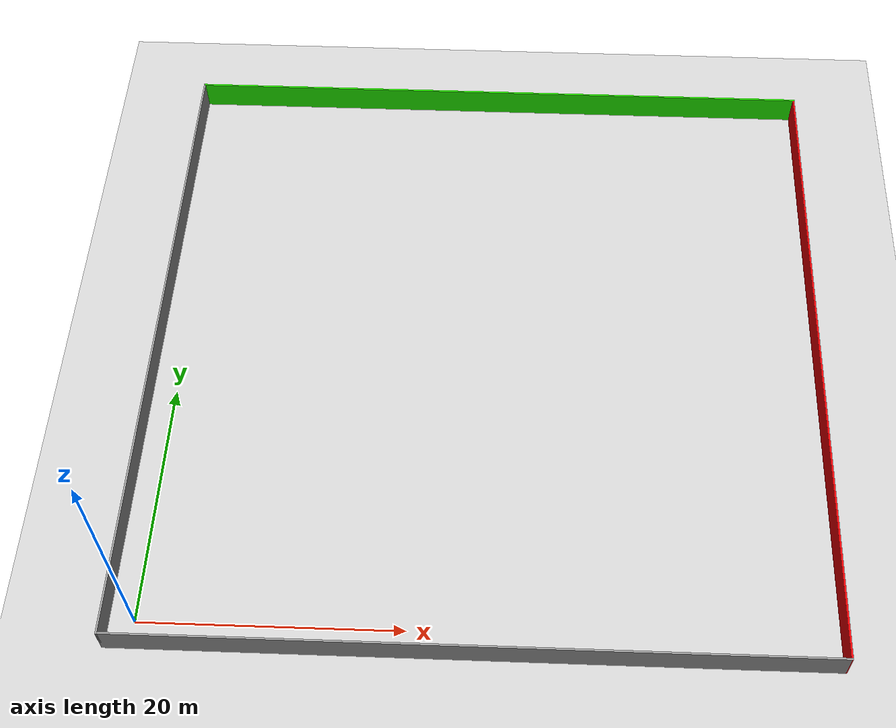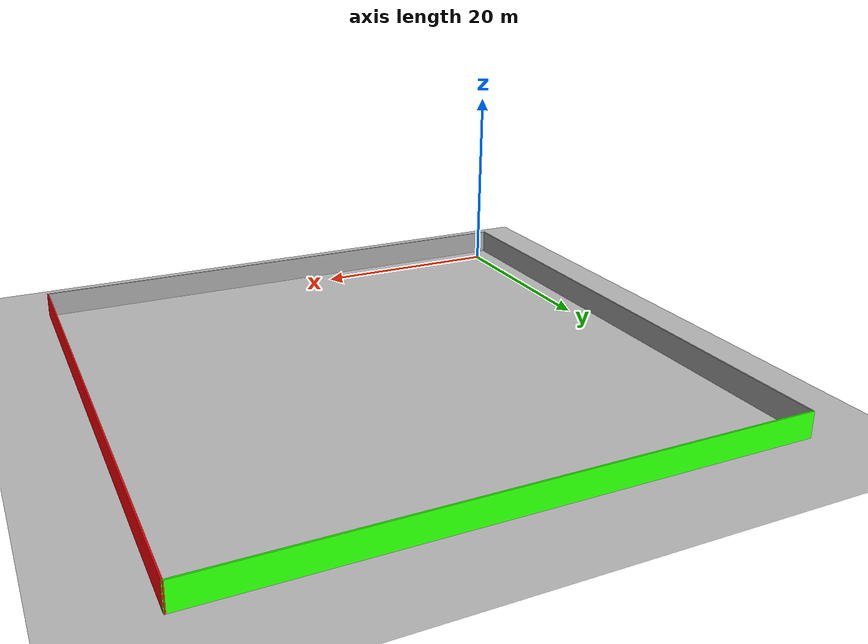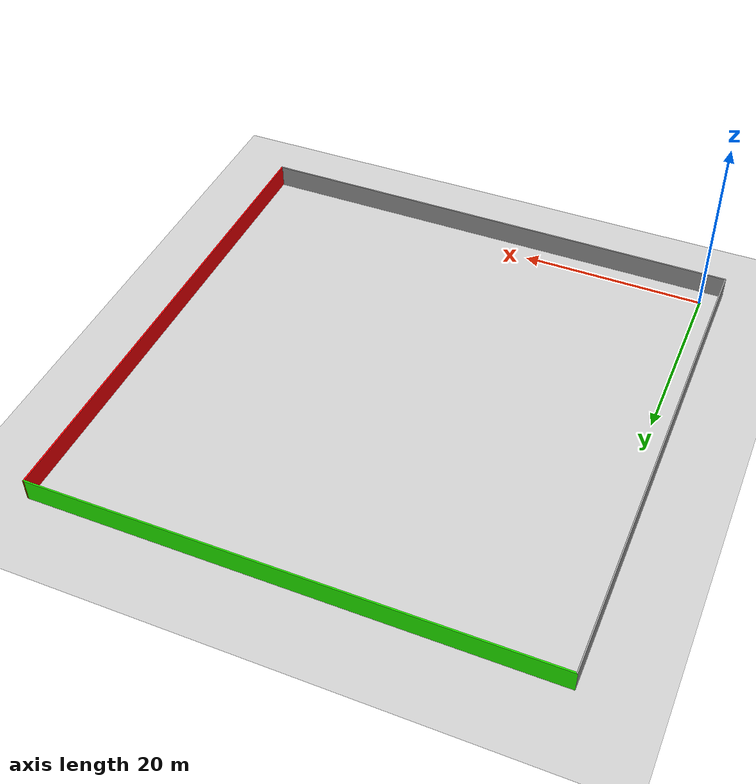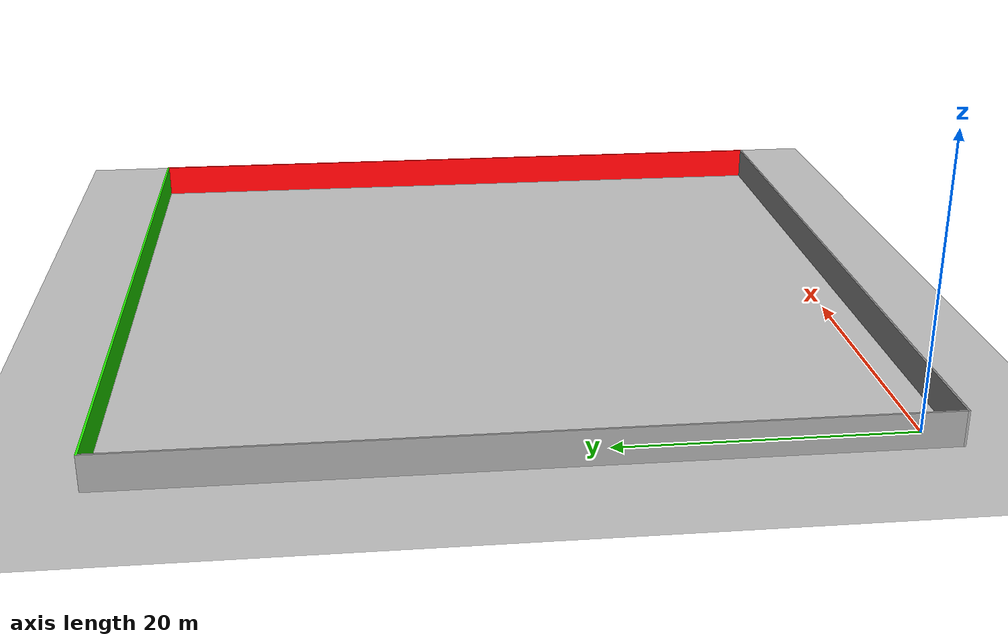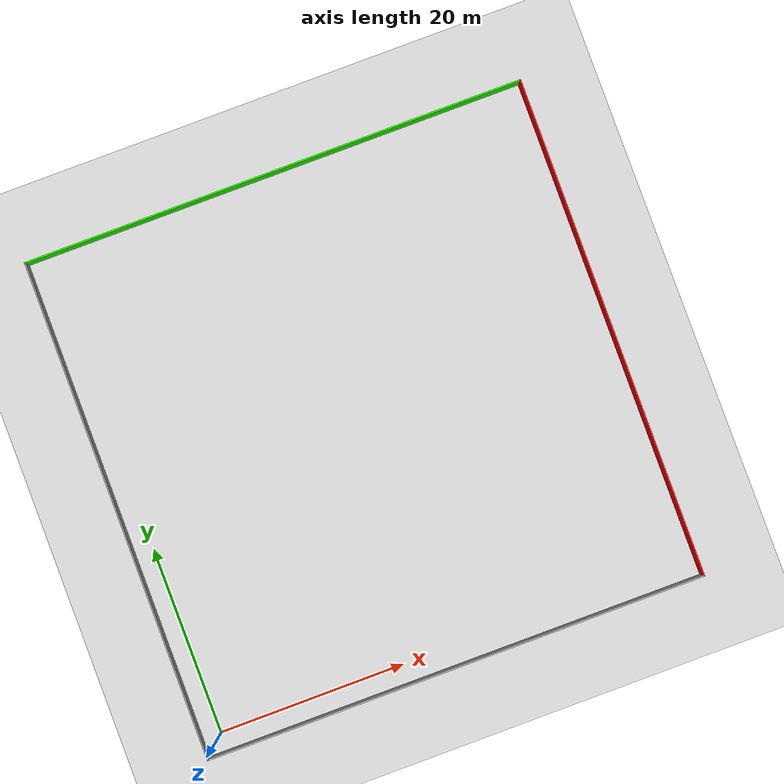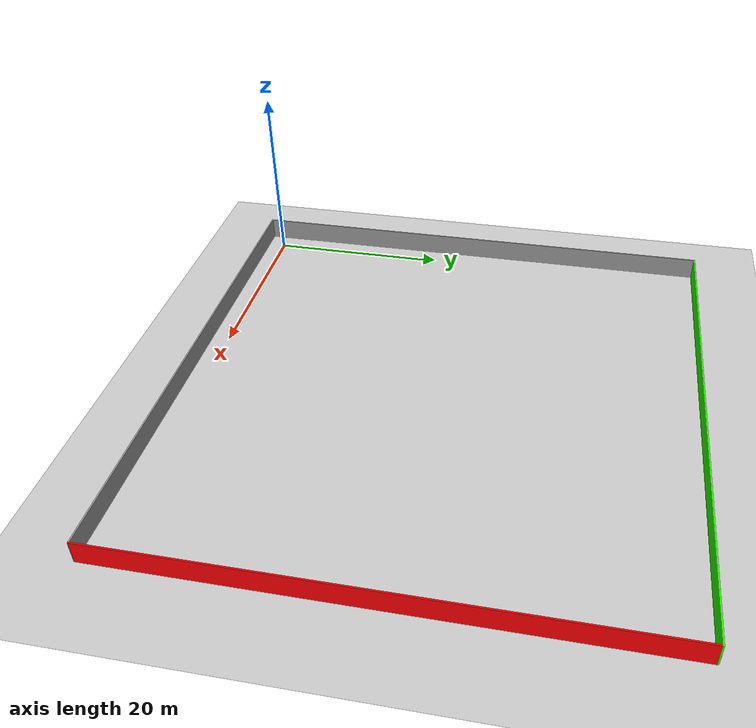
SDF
<sdf version="1.6">
 <world name="default">
  <light name="sun" type="directional">
   <pose>0 0 10 0 -0 0</pose>
   <diffuse>0.8 0.8 0.8 1</diffuse>
   <specular>0.2 0.2 0.2 1</specular>
   <attenuation>
    <range>1000</range>
    <constant>0.9</constant>
    <linear>0.01</linear>
    <quadratic>0.001</quadratic>
   </attenuation>
   <direction>-0.5 0.1 -0.9</direction>
  </light>
  <model name="ground_plane">
   <static>1</static>
   <link name="link">
    <collision name="collision">
     <geometry><plane><normal>0 0 1</normal><size>100 100</size></plane></geometry>
     <surface><friction><ode><mu>100</mu><mu2>50</mu2></ode></friction></surface>
    </collision>
    <visual name="visual">
     <cast_shadows>0</cast_shadows>
     <geometry><plane><normal>0 0 1</normal><size>100 100</size></plane></geometry>
     <material>
      <script><uri>file://media/materials/scripts/gazebo.material</uri><name>Gazebo/Grey</name></script>
     </material>
    </visual>
   </link>
  </model>
  <gravity>0 0 -9.8</gravity>
  <magnetic_field>6e-06 2.3e-05 -4.2e-05</magnetic_field>
  <atmosphere type="adiabatic"/>
  <physics name="default_physics" default="0" type="ode">
   <max_step_size>0.001</max_step_size>
   <real_time_factor>1</real_time_factor>
   <real_time_update_rate>1000</real_time_update_rate>
  </physics>
  <scene><ambient>0.4 0.4 0.4 1</ambient><background>0.7 0.7 0.7 1</background><shadows>1</shadows></scene>
  <spherical_coordinates>
   <surface_model>EARTH_WGS84</surface_model>
   <latitude_deg>0</latitude_deg>
   <longitude_deg>0</longitude_deg>
   <elevation>0</elevation>
   <heading_deg>0</heading_deg>
  </spherical_coordinates>
  <model name="map_1">
   <pose>25 25 0 0 -0 0</pose>
   <link name="Wall_10">
    <collision name="Wall_10_Collision">
     <geometry><box><size>54 0.15 2.5</size></box></geometry>
     <pose>0 0 1.25 0 -0 0</pose>
    </collision>
    <visual name="Wall_10_Visual">
     <pose>0 0 1.25 0 -0 0</pose>
     <geometry><box><size>54 0.15 2.5</size></box></geometry>
     <material>
      <script><uri>file://media/materials/scripts/gazebo.material</uri><name>Gazebo/Grey</name></script>
      <ambient>1 1 1 1</ambient>
     </material>
     <meta><layer>0</layer></meta>
    </visual>
    <pose>-0.075052 -27 0 0 -0 0</pose>
   </link>
   <link name="Wall_12">
    <collision name="Wall_12_Collision">
     <geometry><box><size>54.1502 0.15 2.5</size></box></geometry>
     <pose>0 0 1.25 0 -0 0</pose>
    </collision>
    <visual name="Wall_12_Visual">
     <pose>0 0 1.25 0 -0 0</pose>
     <geometry><box><size>54.1502 0.15 2.5</size></box></geometry>
     <material>
      <script><uri>file://media/materials/scripts/gazebo.material</uri><name>Gazebo/Grey</name></script>
      <ambient>1 0 0.0156863 1</ambient>
     </material>
     <meta><layer>0</layer></meta>
    </visual>
    <pose>26.9249 0 0 0 -0 1.56802</pose>
   </link>
   <link name="Wall_14">
    <collision name="Wall_14_Collision">
     <geometry><box><size>54.1502 0.15 2.5</size></box></geometry>
     <pose>0 0 1.25 0 -0 0</pose>
    </collision>
    <visual name="Wall_14_Visual">
     <pose>0 0 1.25 0 -0 0</pose>
     <geometry><box><size>54.1502 0.15 2.5</size></box></geometry>
     <material>
      <script><uri>file://media/materials/scripts/gazebo.material</uri><name>Gazebo/Grey</name></script>
      <ambient>0.14902 1 0 1</ambient>
     </material>
     <meta><layer>0</layer></meta>
    </visual>
    <pose>-5.1e-05 27 0 0 -0 3.14159</pose>
   </link>
   <link name="Wall_4">
    <collision name="Wall_4_Collision">
     <geometry><box><size>54.15 0.15 2.5</size></box></geometry>
     <pose>0 0 1.25 0 -0 0</pose>
    </collision>
    <visual name="Wall_4_Visual">
     <pose>0 0 1.25 0 -0 0</pose>
     <geometry><box><size>54.15 0.15 2.5</size></box></geometry>
     <material>
      <script><uri>file://media/materials/scripts/gazebo.material</uri><name>Gazebo/Grey</name></script>
      <ambient>1 1 1 1</ambient>
     </material>
     <meta><layer>0</layer></meta>
    </visual>
    <pose>-27.0001 0 0 0 -0 1.5708</pose>
   </link>
   <static>1</static>
  </model>
 </world>
</sdf>
